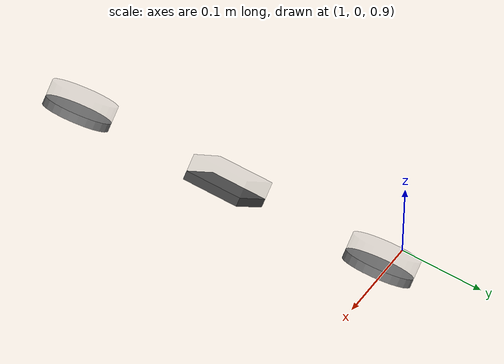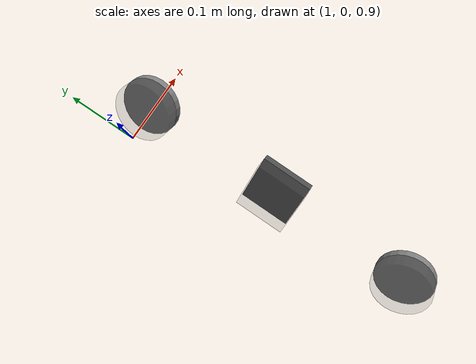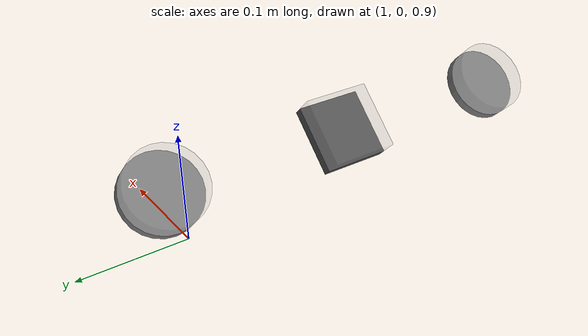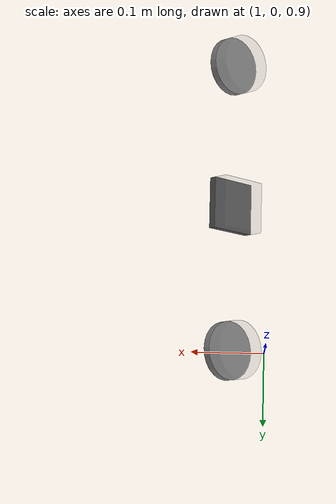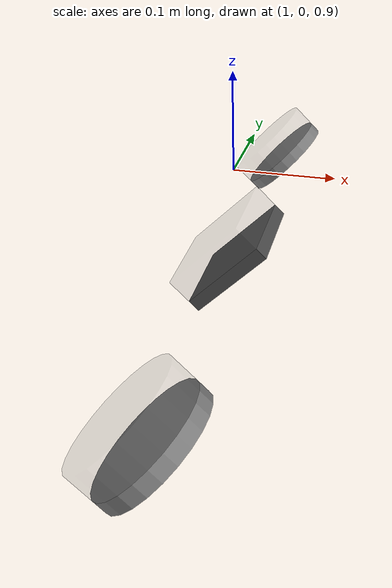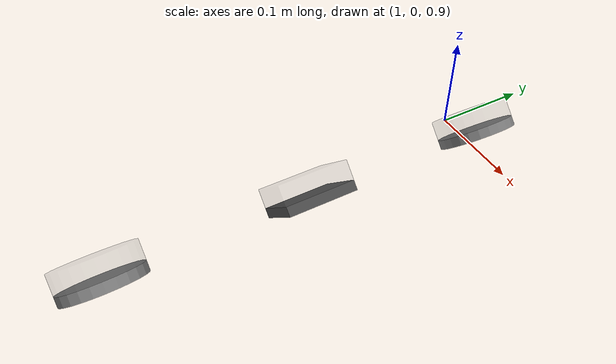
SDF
<?xml version="1.0" ?>
<sdf version="1.5">
  <world name="default">
    <physics type="ode">
      <real_time_update_rate>2000</real_time_update_rate>
      <max_step_size>0.002</max_step_size>
      <gravity>0.0 0.0 -9.81</gravity>
    </physics>

    <include>
      <uri>model://ground_plane</uri>
      <pose>0 0 -0.01  0 0 0</pose>
    </include>
    <include>
      <uri>model://sun</uri>
    </include>

    <!-- House model: -->

    <include>
      <uri>model://DREAM_table/tableblocker</uri>
      <pose>0.6 0 0  0 0 -1.570796</pose>
      <static>true</static>
    </include>

    <include>
      <name>light_table0</name>
      <uri>model://DREAM_light_round</uri>
      <pose>1.05 -0.0 0.92  0 -0.7854 0</pose>
      <static>true</static>
    </include>

    <include>
      <name>light_table1</name>
      <uri>model://DREAM_light_square</uri>
      <pose>1.05 -0.2 0.92  0 -0.7854 0</pose>
      <static>true</static>
    </include>

    <include>
      <name>light_table2</name>
      <uri>model://DREAM_light_round</uri>
      <pose>1.05 -0.4 0.92  0 -0.7854 0</pose>
      <static>true</static>
    </include>

  </world>
</sdf>

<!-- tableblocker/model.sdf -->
<sdf version="1.4">
<model name="TableBlocker">
    <link name="transversal_right">
      <pose>0.655 0 0.005 0 0 0</pose>
      <collision name="collision">
        <geometry>
          <box>
            <size>0.01 0.5 0.01</size>
          </box>
        </geometry>
      </collision>
    </link>

    <link name="transversal_left">
      <pose>-0.655 0 0.005 0 0 0</pose>
      <collision name="collision">
        <geometry>
          <box>
            <size>0.01 0.5 0.01</size>
          </box>
        </geometry>
      </collision>
    </link>

    <link name="transversal_back">
      <pose>0 0.255 0.005 0 0 0</pose>
      <collision name="collision">
        <geometry>
          <box>
            <size>1.3 0.01 0.01</size>
          </box>
        </geometry>
      </collision>
    </link>

    <link name="transversal_frontright">
      <pose>0.630 -0.255 0.005 0 0 0</pose>
      <collision name="collision">
        <geometry>
          <box>
            <size>0.1 0.01 0.01</size>
          </box>
        </geometry>
      </collision>
    </link>

    <link name="transversal_frontleft">
      <pose>-0.630 -0.255 0.005 0 0 0</pose>
      <collision name="collision">
        <geometry>
          <box>
            <size>0.1 0.01 0.01</size>
          </box>
        </geometry>
      </collision>
    </link>

    <link name="vertical_fr">
      <pose>0.630 -0.255 0.3 0 0 0</pose>
      <collision name="collision">
        <geometry>
          <box>
            <size>0.01 0.01 0.6</size>
          </box>
        </geometry>
      </collision>
    </link>

    <link name="vertical_fl">
      <pose>-0.630 -0.255 0.3 0 0 0</pose>
      <collision name="collision">
        <geometry>
          <box>
            <size>0.01 0.01 0.6</size>
          </box>
        </geometry>
      </collision>
    </link>

    <link name="vertical_br">
      <pose>0.630 0.255 0.3 0 0 0</pose>
      <collision name="collision">
        <geometry>
          <box>
            <size>0.01 0.01 0.6</size>
          </box>
        </geometry>
      </collision>
    </link>

    <link name="vertical_bl">
      <pose>-0.630 0.255 0.3 0 0 0</pose>
      <collision name="collision">
        <geometry>
          <box>
            <size>0.01 0.01 0.6</size>
          </box>
        </geometry>
      </collision>
    </link>
  </model>
</sdf>

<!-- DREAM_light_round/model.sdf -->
<sdf version="1.4">
<model name="light_round">
  <pose>0 0 0.005 0 0 0</pose>

    <link name="base">
      <self_collide>true</self_collide>
      <pose>0 0 0 0 0 0</pose>
      <inertial>
        <mass>0.1</mass>
        <inertia>
          <ixx>0.0002</ixx>
          <ixy>0.0</ixy>
          <ixz>0.0</ixz>
          <iyy>0.0002</iyy>
          <iyz>0.0</iyz>
          <izz>0.0002</izz>
        </inertia>
      </inertial>

      <collision name="collision">
        <geometry>
          <cylinder>
            <radius>0.04</radius>
            <length>0.01</length>
          </cylinder>
        </geometry>
      </collision>

      <visual name="visual">
        <geometry>
          <cylinder>
            <radius>0.04</radius>
            <length>0.01</length>
          </cylinder>
        </geometry>
        <material>
          <diffuse>0.5 0.5 0.5 1</diffuse>
          <ambient>0.3 0.3 0.3 1</ambient>
          <specular>0.8 0.8 0.8 1</specular>
          <emissive>0 0 0 0</emissive>
        </material>
      </visual>
    </link>

    <link name="lamp">
      <self_collide>true</self_collide>
      <pose>0 0 0.015 0 0 0</pose>
      <inertial>
        <mass>0.1</mass>
        <inertia>
          <ixx>0.0002</ixx>
          <ixy>0.0</ixy>
          <ixz>0.0</ixz>
          <iyy>0.0002</iyy>
          <iyz>0.0</iyz>
          <izz>0.0002</izz>
        </inertia>
      </inertial>

      <collision name="collision">
        <geometry>
          <cylinder>
            <radius>0.04</radius>
            <length>0.02</length>
          </cylinder>
        </geometry>
      </collision>

      <visual name="visual">
        <geometry>
          <cylinder>
            <radius>0.04</radius>
            <length>0.02</length>
          </cylinder>
        </geometry>
        <material>
          <diffuse>0.5 0.5 0.5 0.1</diffuse>
          <ambient>0.3 0.3 0.3 0.1</ambient>
          <specular>0.7 0.7 0.7 0.1</specular>
          <emissive>0 0 0 1</emissive>
        </material>
        <plugin name="color_plugin" filename="libDREAM_change_color.so"/>
      </visual>
    </link>

    <joint name="fixe" type="revolute">
        <pose>0 0 0 0 0 0</pose>
        <child>lamp</child>
        <parent>base</parent>
        <axis>
            <xyz>1 0 0</xyz>
            <limit>
                <lower>0</lower>
                <upper>0</upper>
            </limit>
        </axis>
    </joint>

  </model>
</sdf>

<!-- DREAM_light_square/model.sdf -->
<sdf version="1.4">
<model name="light_square">
  <pose>0 0 0.005 0 0 0</pose>

    <link name="base">
      <self_collide>true</self_collide>
      <pose>0 0 0 0 0 0</pose>
      <inertial>
        <mass>0.1</mass>
        <inertia>
          <ixx>0.0002</ixx>
          <ixy>0.0</ixy>
          <ixz>0.0</ixz>
          <iyy>0.0002</iyy>
          <iyz>0.0</iyz>
          <izz>0.0004</izz>
        </inertia>
      </inertial>

      <collision name="collision">
        <geometry>
            <box>
              <size>0.07 0.07 0.01</size>
            </box>
        </geometry>
      </collision>

      <visual name="visual">
        <geometry>
            <box>
              <size>0.07 0.07 0.01</size>
            </box>
        </geometry>
        <material>
          <diffuse>0.3 0.3 0.3 1</diffuse>
          <ambient>0.5 0.5 0.5 1</ambient>
          <specular>0.8 0.8 0.8 1</specular>
          <emissive>0 0 0 0</emissive>
        </material>
      </visual>
    </link>

    <link name="lamp">
      <self_collide>true</self_collide>
      <pose>0 0 0.015 0 0 0</pose>
      <inertial>
        <mass>0.1</mass>
        <inertia>
          <ixx>0.0002</ixx>
          <ixy>0.0</ixy>
          <ixz>0.0</ixz>
          <iyy>0.0002</iyy>
          <iyz>0.0</iyz>
          <izz>0.0004</izz>
        </inertia>
      </inertial>

      <collision name="collision">
        <geometry>
            <box>
              <size>0.07 0.07 0.02</size>
            </box>
        </geometry>
      </collision>

      <visual name="visual">
        <geometry>
            <box>
              <size>0.07 0.07 0.02</size>
            </box>
        </geometry>
        <material>
          <diffuse>0.5 0.5 0.5 0.1</diffuse>
          <ambient>0.3 0.3 0.3 0.1</ambient>
          <specular>0.7 0.7 0.7 0.1</specular>
          <emissive>0 0 0 1</emissive>
        </material>
        <plugin name="color_plugin" filename="libDREAM_change_color.so"/>
      </visual>
    </link>

    <joint name="fixe" type="revolute">
        <pose>0 0 0 0 0 0</pose>
        <child>lamp</child>
        <parent>base</parent>
        <axis>
            <xyz>1 0 0</xyz>
            <limit>
                <lower>0</lower>
                <upper>0</upper>
            </limit>
        </axis>
    </joint>

  </model>
</sdf>
